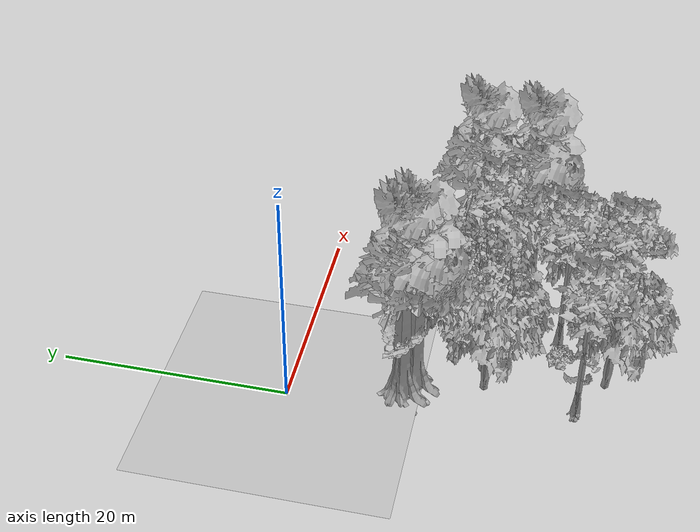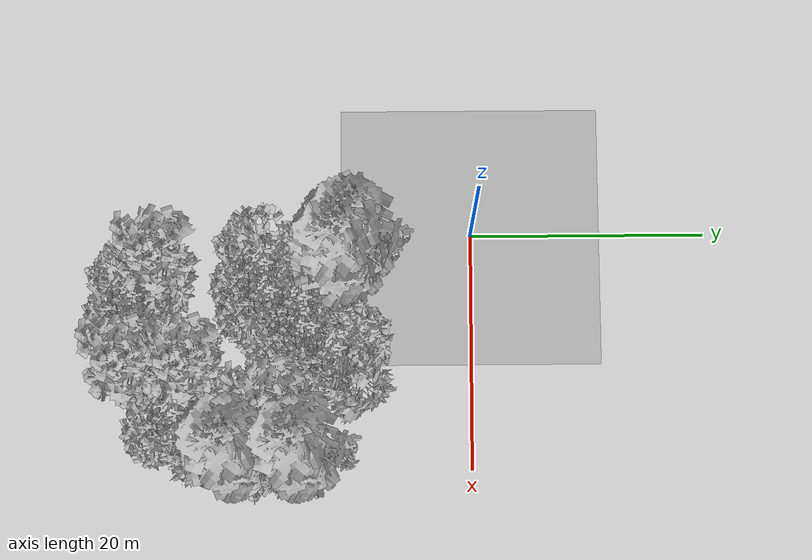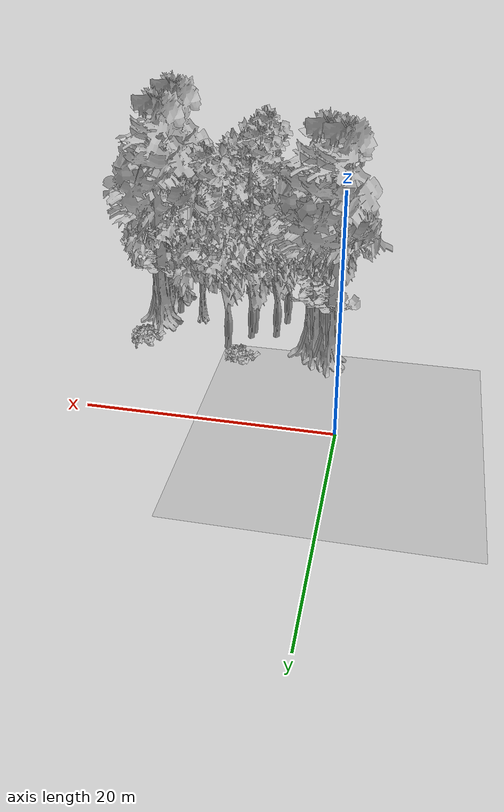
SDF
<sdf version="1.7">
 <world name="default">
  <model name="ground_plane">
   <static>1</static>
   <link name="link">
    <collision name="collision">
     <geometry><plane><normal>0 0 1</normal><size>100 100</size></plane></geometry>
     <surface><contact><ode><min_depth>0.01</min_depth><max_vel>0</max_vel></ode></contact></surface>
    </collision>
    <visual name="grass">
     <cast_shadows>0</cast_shadows>
     <geometry>
      <mesh>
       <scale>0.41000000000000003 0.41000000000000003 0.1</scale>
       <uri>file://grass_plane/meshes/grass_plane.dae</uri>
      </mesh>
     </geometry>
    </visual>
   </link>
  </model>
  <model name="Tree 42">
   <static>1</static>
   <pose>17.768627958104858 -13.506438107565714 0 1.57079 -0 0</pose>
   <link name="link">
    <collision name="collision">
     <geometry><mesh><scale>5 5 5</scale><uri>model://tree_4/meshes/tree_4.obj</uri></mesh></geometry>
    </collision>
    <visual name="visual">
     <geometry><mesh><scale>5 5 5</scale><uri>model://tree_4/meshes/tree_4.obj</uri></mesh></geometry>
    </visual>
   </link>
  </model>
  <model name="Tree 60">
   <static>1</static>
   <pose>6.862749363644205 -13.238998403001034 0 1.57079 -0 0</pose>
   <link name="link">
    <collision name="collision">
     <geometry><mesh><scale>5 5 5</scale><uri>model://tree_2/meshes/tree_2.obj</uri></mesh></geometry>
    </collision>
    <visual name="visual">
     <geometry><mesh><scale>5 5 5</scale><uri>model://tree_2/meshes/tree_2.obj</uri></mesh></geometry>
    </visual>
   </link>
  </model>
  <model name="Tree 88">
   <static>1</static>
   <pose>9.057533686484057 -12.652472677659333 0 1.57079 -0 0</pose>
   <link name="link">
    <collision name="collision">
     <geometry><mesh><scale>5 5 5</scale><uri>model://tree_2/meshes/tree_2.obj</uri></mesh></geometry>
    </collision>
    <visual name="visual">
     <geometry><mesh><scale>5 5 5</scale><uri>model://tree_2/meshes/tree_2.obj</uri></mesh></geometry>
    </visual>
   </link>
  </model>
  <model name="Tree 136">
   <static>1</static>
   <pose>6.555535081400947 -26.276757290732622 0 1.57079 -0 0</pose>
   <link name="link">
    <collision name="collision">
     <geometry><mesh><scale>5 5 5</scale><uri>model://tree_2/meshes/tree_2.obj</uri></mesh></geometry>
    </collision>
    <visual name="visual">
     <geometry><mesh><scale>5 5 5</scale><uri>model://tree_2/meshes/tree_2.obj</uri></mesh></geometry>
    </visual>
   </link>
  </model>
  <model name="Tree 191">
   <static>1</static>
   <pose>3.2712295106868012 -10.30562930904857 0 1.57079 -0 0</pose>
   <link name="link">
    <collision name="collision">
     <geometry><mesh><scale>5 5 5</scale><uri>model://tree_4/meshes/tree_4.obj</uri></mesh></geometry>
    </collision>
    <visual name="visual">
     <geometry><mesh><scale>5 5 5</scale><uri>model://tree_4/meshes/tree_4.obj</uri></mesh></geometry>
    </visual>
   </link>
  </model>
  <model name="Tree 220">
   <static>1</static>
   <pose>1.8639907155610018 -9.446952442271858 0 1.57079 -0 0</pose>
   <link name="link">
    <collision name="collision">
     <geometry><mesh><scale>5 5 5</scale><uri>model://tree_4/meshes/tree_4.obj</uri></mesh></geometry>
    </collision>
    <visual name="visual">
     <geometry><mesh><scale>5 5 5</scale><uri>model://tree_4/meshes/tree_4.obj</uri></mesh></geometry>
    </visual>
   </link>
  </model>
  <model name="Tree 227">
   <static>1</static>
   <pose>15.606646929918085 -23.060174489988373 0 1.57079 -0 0</pose>
   <link name="link">
    <collision name="collision">
     <geometry><mesh><scale>5 5 5</scale><uri>model://tree_2/meshes/tree_2.obj</uri></mesh></geometry>
    </collision>
    <visual name="visual">
     <geometry><mesh><scale>5 5 5</scale><uri>model://tree_2/meshes/tree_2.obj</uri></mesh></geometry>
    </visual>
   </link>
  </model>
  <model name="Tree 242">
   <static>1</static>
   <pose>8.931278209050085 -13.522976976945642 0 1.57079 -0 0</pose>
   <link name="link">
    <collision name="collision">
     <geometry><mesh><scale>5 5 5</scale><uri>model://tree_2/meshes/tree_2.obj</uri></mesh></geometry>
    </collision>
    <visual name="visual">
     <geometry><mesh><scale>5 5 5</scale><uri>model://tree_2/meshes/tree_2.obj</uri></mesh></geometry>
    </visual>
   </link>
  </model>
  <model name="Tree 265">
   <static>1</static>
   <pose>18.003513778393256 -16.924962852991698 0 1.57079 -0 0</pose>
   <link name="link">
    <collision name="collision">
     <geometry><mesh><scale>5 5 5</scale><uri>model://tree_9/meshes/tree_9.obj</uri></mesh></geometry>
    </collision>
    <visual name="visual">
     <geometry><mesh><scale>5 5 5</scale><uri>model://tree_9/meshes/tree_9.obj</uri></mesh></geometry>
    </visual>
   </link>
  </model>
  <model name="Tree 283">
   <static>1</static>
   <pose>6.295768831552614 -15.802613625119086 0 1.57079 -0 0</pose>
   <link name="link">
    <collision name="collision">
     <geometry><mesh><scale>5 5 5</scale><uri>model://tree_2/meshes/tree_2.obj</uri></mesh></geometry>
    </collision>
    <visual name="visual">
     <geometry><mesh><scale>5 5 5</scale><uri>model://tree_2/meshes/tree_2.obj</uri></mesh></geometry>
    </visual>
   </link>
  </model>
  <model name="Tree 294">
   <static>1</static>
   <pose>17.726136134458315 -18.311503051659905 0 1.57079 -0 0</pose>
   <link name="link">
    <collision name="collision">
     <geometry><mesh><scale>5 5 5</scale><uri>model://tree_4/meshes/tree_4.obj</uri></mesh></geometry>
    </collision>
    <visual name="visual">
     <geometry><mesh><scale>5 5 5</scale><uri>model://tree_4/meshes/tree_4.obj</uri></mesh></geometry>
    </visual>
   </link>
  </model>
  <model name="Tree 312">
   <static>1</static>
   <pose>16.574036281029038 -15.829431128959826 0 1.57079 -0 0</pose>
   <link name="link">
    <collision name="collision">
     <geometry><mesh><scale>5 5 5</scale><uri>model://tree_2/meshes/tree_2.obj</uri></mesh></geometry>
    </collision>
    <visual name="visual">
     <geometry><mesh><scale>5 5 5</scale><uri>model://tree_2/meshes/tree_2.obj</uri></mesh></geometry>
    </visual>
   </link>
  </model>
  <model name="Tree 350">
   <static>1</static>
   <pose>11.165870726129171 -21.925880403977636 0 1.57079 -0 0</pose>
   <link name="link">
    <collision name="collision">
     <geometry><mesh><scale>5 5 5</scale><uri>model://tree_9/meshes/tree_9.obj</uri></mesh></geometry>
    </collision>
    <visual name="visual">
     <geometry><mesh><scale>5 5 5</scale><uri>model://tree_9/meshes/tree_9.obj</uri></mesh></geometry>
    </visual>
   </link>
  </model>
  <model name="Tree 352">
   <static>1</static>
   <pose>4.143959220281452 -16.235256727797932 0 1.57079 -0 0</pose>
   <link name="link">
    <collision name="collision">
     <geometry><mesh><scale>5 5 5</scale><uri>model://tree_2/meshes/tree_2.obj</uri></mesh></geometry>
    </collision>
    <visual name="visual">
     <geometry><mesh><scale>5 5 5</scale><uri>model://tree_2/meshes/tree_2.obj</uri></mesh></geometry>
    </visual>
   </link>
  </model>
  <model name="Tree 356">
   <static>1</static>
   <pose>10.760014141674219 -10.616425029197451 0 1.57079 -0 0</pose>
   <link name="link">
    <collision name="collision">
     <geometry><mesh><scale>5 5 5</scale><uri>model://tree_2/meshes/tree_2.obj</uri></mesh></geometry>
    </collision>
    <visual name="visual">
     <geometry><mesh><scale>5 5 5</scale><uri>model://tree_2/meshes/tree_2.obj</uri></mesh></geometry>
    </visual>
   </link>
  </model>
  <model name="Tree 395">
   <static>1</static>
   <pose>14.489844292385186 -15.534150735335992 0 1.57079 -0 0</pose>
   <link name="link">
    <collision name="collision">
     <geometry><mesh><scale>5 5 5</scale><uri>model://tree_9/meshes/tree_9.obj</uri></mesh></geometry>
    </collision>
    <visual name="visual">
     <geometry><mesh><scale>5 5 5</scale><uri>model://tree_9/meshes/tree_9.obj</uri></mesh></geometry>
    </visual>
   </link>
  </model>
  <model name="Tree 425">
   <static>1</static>
   <pose>3.0923243359975103 -24.015048944402594 0 1.57079 -0 0</pose>
   <link name="link">
    <collision name="collision">
     <geometry><mesh><scale>5 5 5</scale><uri>model://tree_9/meshes/tree_9.obj</uri></mesh></geometry>
    </collision>
    <visual name="visual">
     <geometry><mesh><scale>5 5 5</scale><uri>model://tree_9/meshes/tree_9.obj</uri></mesh></geometry>
    </visual>
   </link>
  </model>
  <model name="Tree 445">
   <static>1</static>
   <pose>11.20322939207471 -26.444430332889056 0 1.57079 -0 0</pose>
   <link name="link">
    <collision name="collision">
     <geometry><mesh><scale>5 5 5</scale><uri>model://tree_9/meshes/tree_9.obj</uri></mesh></geometry>
    </collision>
    <visual name="visual">
     <geometry><mesh><scale>5 5 5</scale><uri>model://tree_9/meshes/tree_9.obj</uri></mesh></geometry>
    </visual>
   </link>
  </model>
  <model name="Bush 21">
   <static>1</static>
   <pose>18.520220372420766 -10.890957541910332 0 1.57079 -0 0</pose>
   <link name="link">
    <collision name="collision">
     <geometry><mesh><scale>2 2 2</scale><uri>model://bush_2/meshes/bush_2.obj</uri></mesh></geometry>
    </collision>
    <visual name="visual">
     <geometry><mesh><scale>5 5 5</scale><uri>model://bush_2/meshes/bush_2.obj</uri></mesh></geometry>
    </visual>
   </link>
  </model>
  <model name="Bush 60">
   <static>1</static>
   <pose>13.590967308782574 -27.559823680489536 0 1.57079 -0 0</pose>
   <link name="link">
    <collision name="collision">
     <geometry><mesh><scale>2 2 2</scale><uri>model://bush_2/meshes/bush_2.obj</uri></mesh></geometry>
    </collision>
    <visual name="visual">
     <geometry><mesh><scale>5 5 5</scale><uri>model://bush_2/meshes/bush_2.obj</uri></mesh></geometry>
    </visual>
   </link>
  </model>
  <model name="Bush 66">
   <static>1</static>
   <pose>9.192615900271875 -22.39093049840394 0 1.57079 -0 0</pose>
   <link name="link">
    <collision name="collision">
     <geometry><mesh><scale>2 2 2</scale><uri>model://bush_2/meshes/bush_2.obj</uri></mesh></geometry>
    </collision>
    <visual name="visual">
     <geometry><mesh><scale>5 5 5</scale><uri>model://bush_2/meshes/bush_2.obj</uri></mesh></geometry>
    </visual>
   </link>
  </model>
  <model name="Bush 102">
   <static>1</static>
   <pose>9.410127255002195 -9.165181915319074 0 1.57079 -0 0</pose>
   <link name="link">
    <collision name="collision">
     <geometry><mesh><scale>2 2 2</scale><uri>model://bush_2/meshes/bush_2.obj</uri></mesh></geometry>
    </collision>
    <visual name="visual">
     <geometry><mesh><scale>5 5 5</scale><uri>model://bush_2/meshes/bush_2.obj</uri></mesh></geometry>
    </visual>
   </link>
  </model>
 </world>
</sdf>
